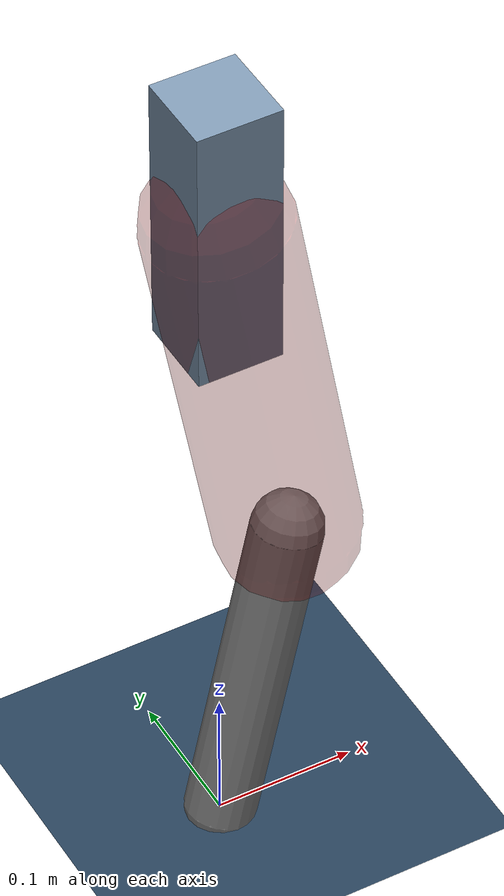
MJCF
<mujoco model="Hopper2D">
	<compiler inertiafromgeom="true" angle="radian" />
	<option timestep="0.001" integrator="implicit" cone="elliptic" solver="Newton" tolerance="1e-10" />

	<default>
		<geom contype="1" conaffinity="1" condim="3" friction="2 0.005 0.0001" solref="0.005 1" />
		<joint limited="true" damping="0.1" />
	</default>

	<asset>
		<texture name="skybox" type="skybox" builtin="gradient" rgb1=".4 .6 .8" rgb2="0 0 0" width="800" height="800" />
		<texture name="grid" type="2d" builtin="checker" rgb1=".1 .2 .3" rgb2=".2 .3 .4" width="300" height="300" mark="edge" markrgb=".2 .3 .4" />
		<material name="ground" texture="grid" texrepeat="1 1" texuniform="true" reflectance="0.1" />
		<material name="leg" rgba="0.5 0.6 0.7 1" />
	</asset>

	<worldbody>

		<geom name="floor" type="plane" size="5 5 0.25" material="ground" />

		<light directional="false" diffuse="0.8 0.8 0.8" specular="0.3 0.3 0.3" pos="0 0 2" dir="0 0 -1" />
		<light mode="targetbodycom" target="base" directional="false" diffuse="0.8 0.8 0.8" specular="0.3 0.3 0.3" pos="0 0 2" dir="0 0 -1" />

		<camera name="fixed" pos="0 -2 1" xyaxes="1 0 0 0 0 1" />
		<camera name="tracking" mode="trackcom" pos="0 -3 1" />

		<body name="root" pos="0 0 0.5262424079477588">
			<joint name="slide_x" type="slide" axis="1 0 0" range="-100 100" />
			<joint name="slide_z" type="slide" axis="0 0 1" range="0 10" />

			<body name="base" pos="0 0 0">
				<geom name="torso" type="box" size="0.03 0.03 0.1" mass="1.462" material="leg" />

				<body name="link1" pos="0 0 0" euler="0 1.3929219171558629 0">
					<joint type="hinge" axis="0 -1 0" pos="0 0 0" name="hinge1" limited="true" range="-3.14 3.14" stiffness="0" damping="0.1" />
					<geom name="thigh" type="capsule" fromto="0 0 0 0.2902480924991431 0 0" size="0.05" rgba="0.5 0 0 0.3" mass="0.9624698497476863" />

					<body name="link2" pos="0.2902480924991431 0 0" euler="0 0.38819007737380945 0">
						<joint type="hinge" axis="0 -1 0" pos="0 0 0" name="hinge2" limited="true" range="-3.14 3.14" stiffness="0" damping="0.1" />
						<geom name="shank" type="capsule" fromto="0 0 0 0.24599431544861572 0 0" size="0.025" mass="0.43919545235889257" />

					</body>
				</body>
			</body>
		</body>
	</worldbody>

	<actuator>
		<motor name="torque1" joint="hinge1" ctrlrange="-14.092710770302716 14.092710770302716" ctrllimited="true" gear="1" />
		<motor name="torque2" joint="hinge2" ctrlrange="-18.80312664808526 18.80312664808526" ctrllimited="true" gear="1" />
	</actuator>
</mujoco>
